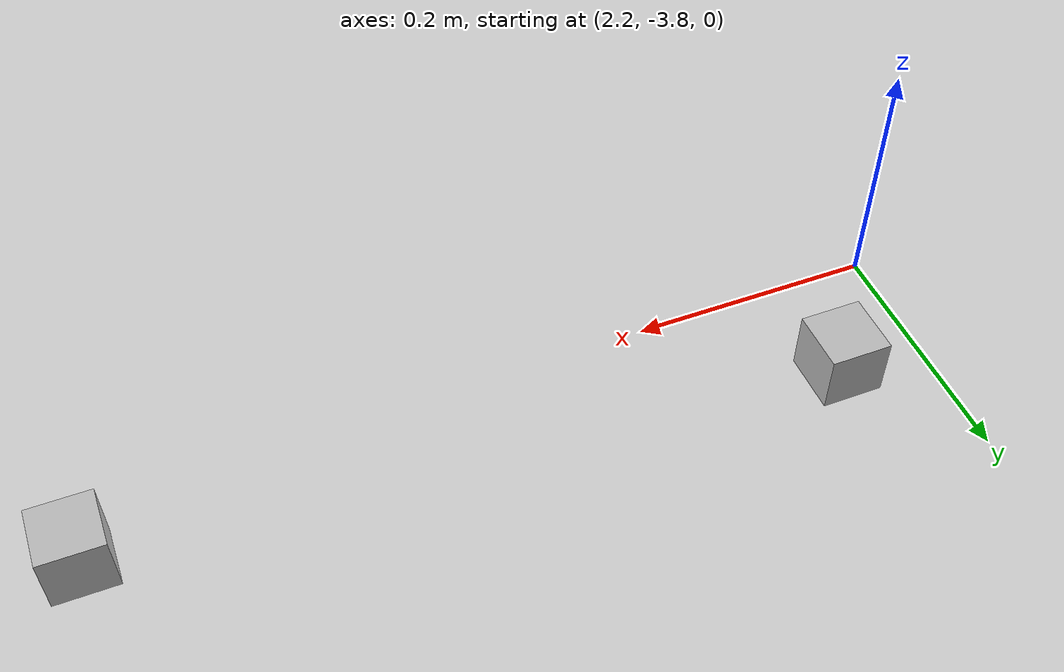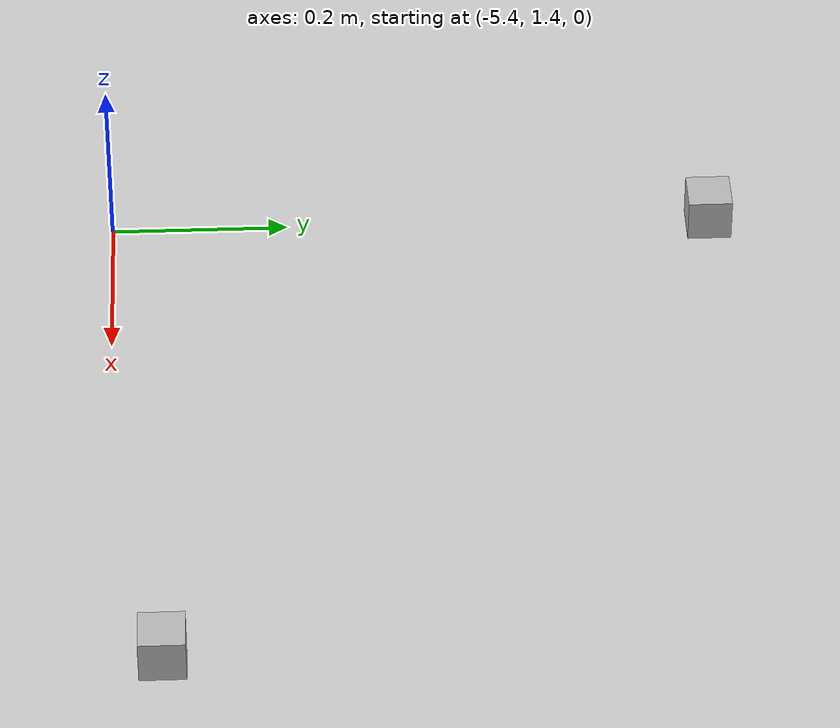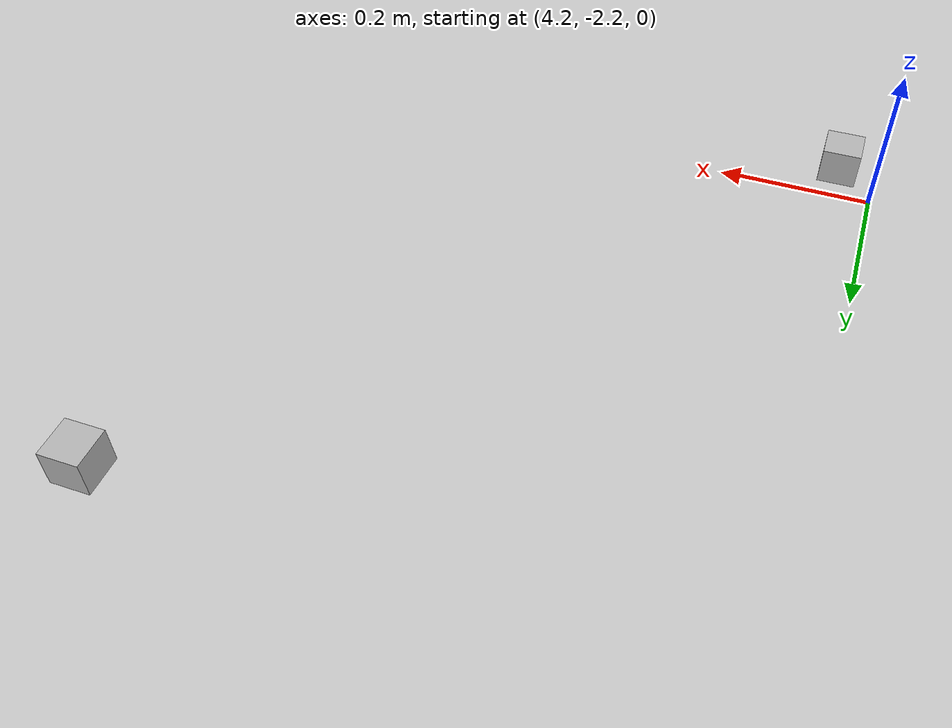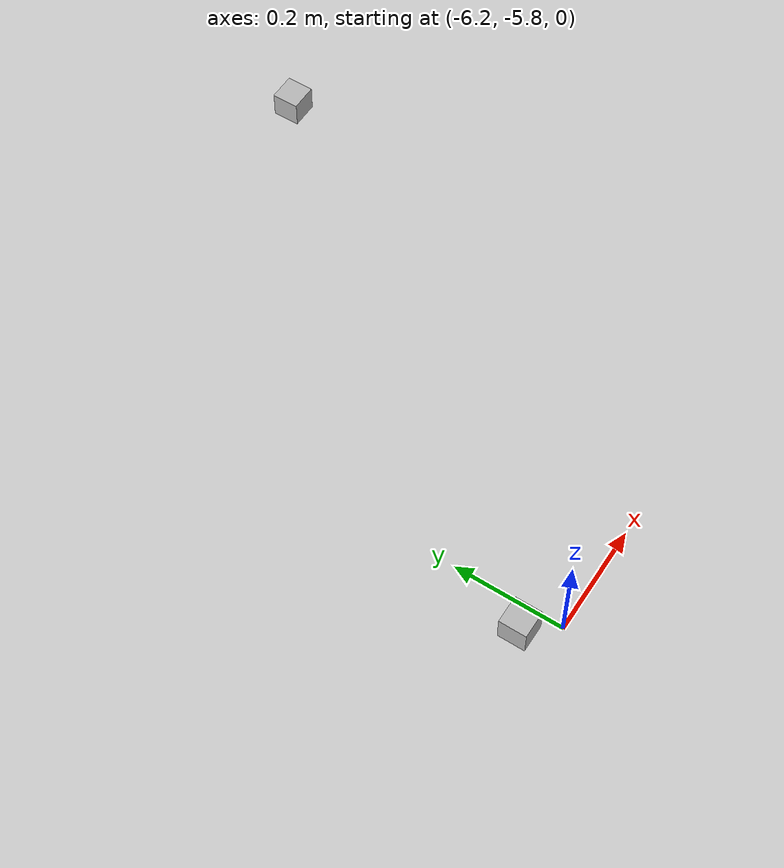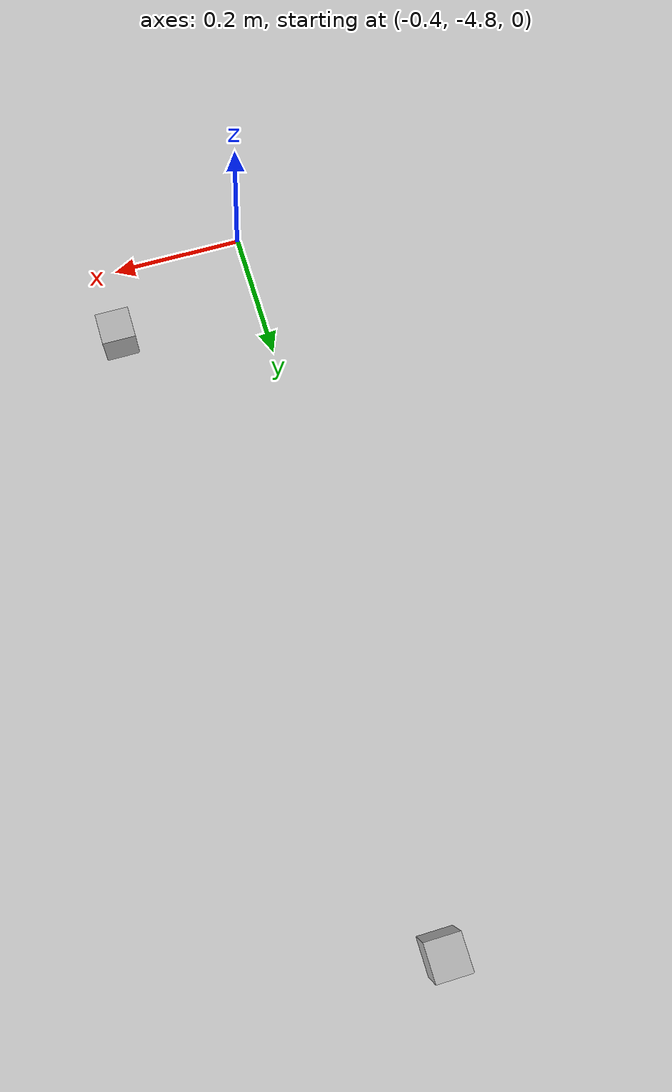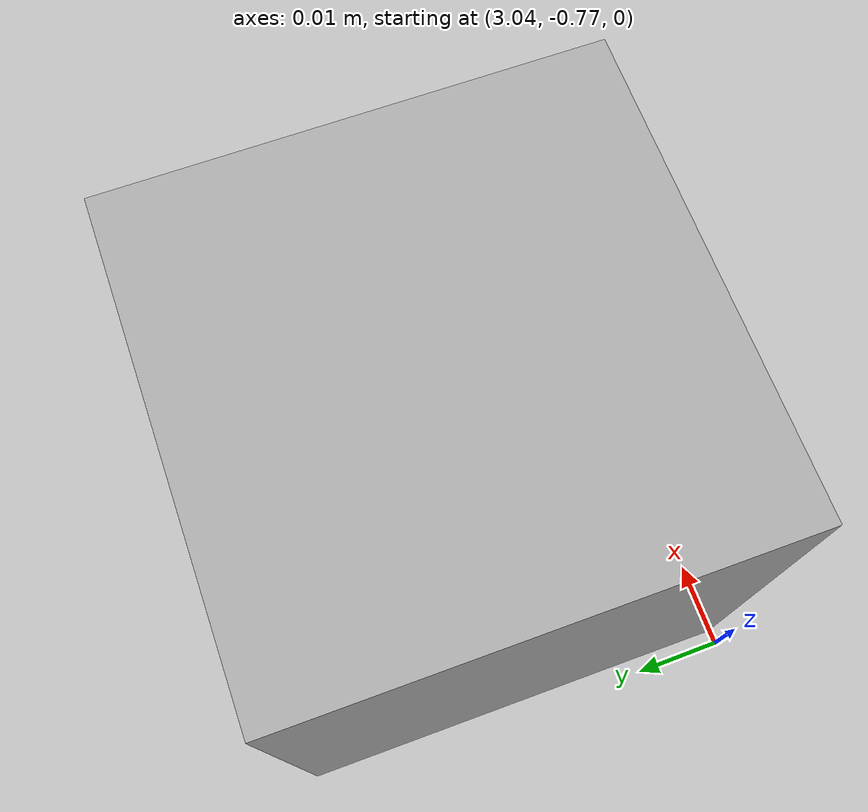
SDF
<sdf version="1.6">
 <world name="default">
  <model name="ground_plane">
   <static>1</static>
   <link name="link">
    <collision name="collision">
     <geometry><plane><normal>0 0 1</normal><size>100 100</size></plane></geometry>
     <surface><friction><ode><mu>100</mu><mu2>50</mu2></ode></friction></surface>
    </collision>
    <visual name="visual">
     <cast_shadows>0</cast_shadows>
     <geometry><plane><normal>0 0 1</normal><size>100 100</size></plane></geometry>
     <material>
      <script><uri>file://media/materials/scripts/gazebo.material</uri><name>Gazebo/Grey</name></script>
     </material>
    </visual>
   </link>
  </model>
  <light name="sun" type="directional">
   <pose>0 0 10 0 -0 0</pose>
   <diffuse>0.8 0.8 0.8 1</diffuse>
   <specular>0.1 0.1 0.1 1</specular>
   <attenuation>
    <range>1000</range>
    <constant>0.9</constant>
    <linear>0.01</linear>
    <quadratic>0.001</quadratic>
   </attenuation>
   <direction>-0.5 0.5 -1</direction>
  </light>
  <plugin name="SetupWorld" filename="libgazebo_plugins.so"/>
  <gravity>0 0 -9.8</gravity>
  <magnetic_field>6e-06 2.3e-05 -4.2e-05</magnetic_field>
  <atmosphere type="adiabatic"/>
  <physics name="default_physics" default="0" type="ode">
   <max_step_size>0.001</max_step_size>
   <real_time_factor>1</real_time_factor>
   <real_time_update_rate>1000</real_time_update_rate>
  </physics>
  <scene><ambient>0.4 0.4 0.4 1</ambient><background>0.7 0.7 0.7 1</background><shadows>1</shadows></scene>
  <spherical_coordinates>
   <surface_model>EARTH_WGS84</surface_model>
   <latitude_deg>0</latitude_deg>
   <longitude_deg>0</longitude_deg>
   <elevation>0</elevation>
   <heading_deg>0</heading_deg>
  </spherical_coordinates>
  <model name="at0">
   <static>0</static>
   <link name="link">
    <inertial>
     <mass>0.01</mass>
     <inertia><ixx>4e-05</ixx><ixy>0</ixy><ixz>0</ixz><iyy>4e-05</iyy><iyz>0</iyz><izz>4e-05</izz></inertia>
    </inertial>
    <visual name="visual">
     <geometry><box><size>0.05 0.05 0.05</size></box></geometry>
     <material>
      <script>
       <uri>model://at0/materials/scripts</uri>
       <uri>model://at0/materials/textures</uri>
       <name>at0/Diffuse</name>
      </script>
     </material>
    </visual>
    <collision name="collision">
     <geometry><box><size>0.05 0.05 0.05</size></box></geometry>
     <surface><friction><ode><mu>0.8</mu><mu2>0.7</mu2></ode></friction></surface>
    </collision>
   </link>
   <pose>-4.69459 1.45752 0.025 0 -0 0</pose>
  </model>
  <model name="at1">
   <static>0</static>
   <link name="link">
    <inertial>
     <mass>0.01</mass>
     <inertia><ixx>4e-05</ixx><ixy>0</ixy><ixz>0</ixz><iyy>4e-05</iyy><iyz>0</iyz><izz>4e-05</izz></inertia>
    </inertial>
    <visual name="visual">
     <geometry><box><size>0.05 0.05 0.05</size></box></geometry>
     <material>
      <script>
       <uri>model://at0/materials/scripts</uri>
       <uri>model://at0/materials/textures</uri>
       <name>at0/Diffuse</name>
      </script>
     </material>
    </visual>
    <collision name="collision">
     <geometry><box><size>0.05 0.05 0.05</size></box></geometry>
     <surface><friction><ode><mu>0.8</mu><mu2>0.7</mu2></ode></friction></surface>
    </collision>
   </link>
   <pose>-3.90677 -4.11847 0.025 0 -0 0</pose>
  </model>
  <model name="at2">
   <static>0</static>
   <link name="link">
    <inertial>
     <mass>0.01</mass>
     <inertia><ixx>4e-05</ixx><ixy>0</ixy><ixz>0</ixz><iyy>4e-05</iyy><iyz>0</iyz><izz>4e-05</izz></inertia>
    </inertial>
    <visual name="visual">
     <geometry><box><size>0.05 0.05 0.05</size></box></geometry>
     <material>
      <script>
       <uri>model://at0/materials/scripts</uri>
       <uri>model://at0/materials/textures</uri>
       <name>at0/Diffuse</name>
      </script>
     </material>
    </visual>
    <collision name="collision">
     <geometry><box><size>0.05 0.05 0.05</size></box></geometry>
     <surface><friction><ode><mu>0.8</mu><mu2>0.7</mu2></ode></friction></surface>
    </collision>
   </link>
   <pose>-5.68073 4.17379 0.025 0 -0 0</pose>
  </model>
  <model name="at3">
   <static>0</static>
   <link name="link">
    <inertial>
     <mass>0.01</mass>
     <inertia><ixx>4e-05</ixx><ixy>0</ixy><ixz>0</ixz><iyy>4e-05</iyy><iyz>0</iyz><izz>4e-05</izz></inertia>
    </inertial>
    <visual name="visual">
     <geometry><box><size>0.05 0.05 0.05</size></box></geometry>
     <material>
      <script>
       <uri>model://at0/materials/scripts</uri>
       <uri>model://at0/materials/textures</uri>
       <name>at0/Diffuse</name>
      </script>
     </material>
    </visual>
    <collision name="collision">
     <geometry><box><size>0.05 0.05 0.05</size></box></geometry>
     <surface><friction><ode><mu>0.8</mu><mu2>0.7</mu2></ode></friction></surface>
    </collision>
   </link>
   <pose>2.27393 -3.70157 0.025 0 -0 0</pose>
  </model>
  <model name="at4">
   <static>0</static>
   <link name="link">
    <inertial>
     <mass>0.01</mass>
     <inertia><ixx>4e-05</ixx><ixy>0</ixy><ixz>0</ixz><iyy>4e-05</iyy><iyz>0</iyz><izz>4e-05</izz></inertia>
    </inertial>
    <visual name="visual">
     <geometry><box><size>0.05 0.05 0.05</size></box></geometry>
     <material>
      <script>
       <uri>model://at0/materials/scripts</uri>
       <uri>model://at0/materials/textures</uri>
       <name>at0/Diffuse</name>
      </script>
     </material>
    </visual>
    <collision name="collision">
     <geometry><box><size>0.05 0.05 0.05</size></box></geometry>
     <surface><friction><ode><mu>0.8</mu><mu2>0.7</mu2></ode></friction></surface>
    </collision>
   </link>
   <pose>3.06671 -0.744786 0.025 0 -0 0</pose>
  </model>
  <model name="at5">
   <static>0</static>
   <link name="link">
    <inertial>
     <mass>0.01</mass>
     <inertia><ixx>4e-05</ixx><ixy>0</ixy><ixz>0</ixz><iyy>4e-05</iyy><iyz>0</iyz><izz>4e-05</izz></inertia>
    </inertial>
    <visual name="visual">
     <geometry><box><size>0.05 0.05 0.05</size></box></geometry>
     <material>
      <script>
       <uri>model://at0/materials/scripts</uri>
       <uri>model://at0/materials/textures</uri>
       <name>at0/Diffuse</name>
      </script>
     </material>
    </visual>
    <collision name="collision">
     <geometry><box><size>0.05 0.05 0.05</size></box></geometry>
     <surface><friction><ode><mu>0.8</mu><mu2>0.7</mu2></ode></friction></surface>
    </collision>
   </link>
   <pose>0.311921 -1.77842 0.025 0 -0 0</pose>
  </model>
  <model name="at6">
   <static>0</static>
   <link name="link">
    <inertial>
     <mass>0.01</mass>
     <inertia><ixx>4e-05</ixx><ixy>0</ixy><ixz>0</ixz><iyy>4e-05</iyy><iyz>0</iyz><izz>4e-05</izz></inertia>
    </inertial>
    <visual name="visual">
     <geometry><box><size>0.05 0.05 0.05</size></box></geometry>
     <material>
      <script>
       <uri>model://at0/materials/scripts</uri>
       <uri>model://at0/materials/textures</uri>
       <name>at0/Diffuse</name>
      </script>
     </material>
    </visual>
    <collision name="collision">
     <geometry><box><size>0.05 0.05 0.05</size></box></geometry>
     <surface><friction><ode><mu>0.8</mu><mu2>0.7</mu2></ode></friction></surface>
    </collision>
   </link>
   <pose>1.86597 -0.184933 0.025 0 -0 0</pose>
  </model>
  <model name="at7">
   <static>0</static>
   <link name="link">
    <inertial>
     <mass>0.01</mass>
     <inertia><ixx>4e-05</ixx><ixy>0</ixy><ixz>0</ixz><iyy>4e-05</iyy><iyz>0</iyz><izz>4e-05</izz></inertia>
    </inertial>
    <visual name="visual">
     <geometry><box><size>0.05 0.05 0.05</size></box></geometry>
     <material>
      <script>
       <uri>model://at0/materials/scripts</uri>
       <uri>model://at0/materials/textures</uri>
       <name>at0/Diffuse</name>
      </script>
     </material>
    </visual>
    <collision name="collision">
     <geometry><box><size>0.05 0.05 0.05</size></box></geometry>
     <surface><friction><ode><mu>0.8</mu><mu2>0.7</mu2></ode></friction></surface>
    </collision>
   </link>
   <pose>-6.24077 -5.74349 0.025 0 -0 0</pose>
  </model>
  <model name="at8">
   <static>0</static>
   <link name="link">
    <inertial>
     <mass>0.01</mass>
     <inertia><ixx>4e-05</ixx><ixy>0</ixy><ixz>0</ixz><iyy>4e-05</iyy><iyz>0</iyz><izz>4e-05</izz></inertia>
    </inertial>
    <visual name="visual">
     <geometry><box><size>0.05 0.05 0.05</size></box></geometry>
     <material>
      <script>
       <uri>model://at0/materials/scripts</uri>
       <uri>model://at0/materials/textures</uri>
       <name>at0/Diffuse</name>
      </script>
     </material>
    </visual>
    <collision name="collision">
     <geometry><box><size>0.05 0.05 0.05</size></box></geometry>
     <surface><friction><ode><mu>0.8</mu><mu2>0.7</mu2></ode></friction></surface>
    </collision>
   </link>
   <pose>-1.87282 -2.9987 0.025 0 -0 0</pose>
  </model>
  <model name="at9">
   <static>0</static>
   <link name="link">
    <inertial>
     <mass>0.01</mass>
     <inertia><ixx>4e-05</ixx><ixy>0</ixy><ixz>0</ixz><iyy>4e-05</iyy><iyz>0</iyz><izz>4e-05</izz></inertia>
    </inertial>
    <visual name="visual">
     <geometry><box><size>0.05 0.05 0.05</size></box></geometry>
     <material>
      <script>
       <uri>model://at0/materials/scripts</uri>
       <uri>model://at0/materials/textures</uri>
       <name>at0/Diffuse</name>
      </script>
     </material>
    </visual>
    <collision name="collision">
     <geometry><box><size>0.05 0.05 0.05</size></box></geometry>
     <surface><friction><ode><mu>0.8</mu><mu2>0.7</mu2></ode></friction></surface>
    </collision>
   </link>
   <pose>4.94588 -1.47617 0.025 0 -0 0</pose>
  </model>
  <model name="at10">
   <static>0</static>
   <link name="link">
    <inertial>
     <mass>0.01</mass>
     <inertia><ixx>4e-05</ixx><ixy>0</ixy><ixz>0</ixz><iyy>4e-05</iyy><iyz>0</iyz><izz>4e-05</izz></inertia>
    </inertial>
    <visual name="visual">
     <geometry><box><size>0.05 0.05 0.05</size></box></geometry>
     <material>
      <script>
       <uri>model://at0/materials/scripts</uri>
       <uri>model://at0/materials/textures</uri>
       <name>at0/Diffuse</name>
      </script>
     </material>
    </visual>
    <collision name="collision">
     <geometry><box><size>0.05 0.05 0.05</size></box></geometry>
     <surface><friction><ode><mu>0.8</mu><mu2>0.7</mu2></ode></friction></surface>
    </collision>
   </link>
   <pose>6.67505 3.54816 0.025 0 -0 0</pose>
  </model>
  <model name="at11">
   <static>0</static>
   <link name="link">
    <inertial>
     <mass>0.01</mass>
     <inertia><ixx>4e-05</ixx><ixy>0</ixy><ixz>0</ixz><iyy>4e-05</iyy><iyz>0</iyz><izz>4e-05</izz></inertia>
    </inertial>
    <visual name="visual">
     <geometry><box><size>0.05 0.05 0.05</size></box></geometry>
     <material>
      <script>
       <uri>model://at0/materials/scripts</uri>
       <uri>model://at0/materials/textures</uri>
       <name>at0/Diffuse</name>
      </script>
     </material>
    </visual>
    <collision name="collision">
     <geometry><box><size>0.05 0.05 0.05</size></box></geometry>
     <surface><friction><ode><mu>0.8</mu><mu2>0.7</mu2></ode></friction></surface>
    </collision>
   </link>
   <pose>5.0062 -4.19764 0.025 0 -0 0</pose>
  </model>
  <model name="at12">
   <static>0</static>
   <link name="link">
    <inertial>
     <mass>0.01</mass>
     <inertia><ixx>4e-05</ixx><ixy>0</ixy><ixz>0</ixz><iyy>4e-05</iyy><iyz>0</iyz><izz>4e-05</izz></inertia>
    </inertial>
    <visual name="visual">
     <geometry><box><size>0.05 0.05 0.05</size></box></geometry>
     <material>
      <script>
       <uri>model://at0/materials/scripts</uri>
       <uri>model://at0/materials/textures</uri>
       <name>at0/Diffuse</name>
      </script>
     </material>
    </visual>
    <collision name="collision">
     <geometry><box><size>0.05 0.05 0.05</size></box></geometry>
     <surface><friction><ode><mu>0.8</mu><mu2>0.7</mu2></ode></friction></surface>
    </collision>
   </link>
   <pose>4.73783 1.36697 0.025 0 -0 0</pose>
  </model>
  <model name="at13">
   <static>0</static>
   <link name="link">
    <inertial>
     <mass>0.01</mass>
     <inertia><ixx>4e-05</ixx><ixy>0</ixy><ixz>0</ixz><iyy>4e-05</iyy><iyz>0</iyz><izz>4e-05</izz></inertia>
    </inertial>
    <visual name="visual">
     <geometry><box><size>0.05 0.05 0.05</size></box></geometry>
     <material>
      <script>
       <uri>model://at0/materials/scripts</uri>
       <uri>model://at0/materials/textures</uri>
       <name>at0/Diffuse</name>
      </script>
     </material>
    </visual>
    <collision name="collision">
     <geometry><box><size>0.05 0.05 0.05</size></box></geometry>
     <surface><friction><ode><mu>0.8</mu><mu2>0.7</mu2></ode></friction></surface>
    </collision>
   </link>
   <pose>5.10889 5.39844 0.025 0 -0 0</pose>
  </model>
  <model name="at14">
   <static>0</static>
   <link name="link">
    <inertial>
     <mass>0.01</mass>
     <inertia><ixx>4e-05</ixx><ixy>0</ixy><ixz>0</ixz><iyy>4e-05</iyy><iyz>0</iyz><izz>4e-05</izz></inertia>
    </inertial>
    <visual name="visual">
     <geometry><box><size>0.05 0.05 0.05</size></box></geometry>
     <material>
      <script>
       <uri>model://at0/materials/scripts</uri>
       <uri>model://at0/materials/textures</uri>
       <name>at0/Diffuse</name>
      </script>
     </material>
    </visual>
    <collision name="collision">
     <geometry><box><size>0.05 0.05 0.05</size></box></geometry>
     <surface><friction><ode><mu>0.8</mu><mu2>0.7</mu2></ode></friction></surface>
    </collision>
   </link>
   <pose>-6.88516 3.88805 0.025 0 -0 0</pose>
  </model>
  <model name="at15">
   <static>0</static>
   <link name="link">
    <inertial>
     <mass>0.01</mass>
     <inertia><ixx>4e-05</ixx><ixy>0</ixy><ixz>0</ixz><iyy>4e-05</iyy><iyz>0</iyz><izz>4e-05</izz></inertia>
    </inertial>
    <visual name="visual">
     <geometry><box><size>0.05 0.05 0.05</size></box></geometry>
     <material>
      <script>
       <uri>model://at0/materials/scripts</uri>
       <uri>model://at0/materials/textures</uri>
       <name>at0/Diffuse</name>
      </script>
     </material>
    </visual>
    <collision name="collision">
     <geometry><box><size>0.05 0.05 0.05</size></box></geometry>
     <surface><friction><ode><mu>0.8</mu><mu2>0.7</mu2></ode></friction></surface>
    </collision>
   </link>
   <pose>-0.178467 -4.67975 0.025 0 -0 0</pose>
  </model>
  <model name="at16">
   <static>0</static>
   <link name="link">
    <inertial>
     <mass>0.01</mass>
     <inertia><ixx>4e-05</ixx><ixy>0</ixy><ixz>0</ixz><iyy>4e-05</iyy><iyz>0</iyz><izz>4e-05</izz></inertia>
    </inertial>
    <visual name="visual">
     <geometry><box><size>0.05 0.05 0.05</size></box></geometry>
     <material>
      <script>
       <uri>model://at0/materials/scripts</uri>
       <uri>model://at0/materials/textures</uri>
       <name>at0/Diffuse</name>
      </script>
     </material>
    </visual>
    <collision name="collision">
     <geometry><box><size>0.05 0.05 0.05</size></box></geometry>
     <surface><friction><ode><mu>0.8</mu><mu2>0.7</mu2></ode></friction></surface>
    </collision>
   </link>
   <pose>-1.55443 2.81476 0.025 0 -0 0</pose>
  </model>
  <model name="at17">
   <static>0</static>
   <link name="link">
    <inertial>
     <mass>0.01</mass>
     <inertia><ixx>4e-05</ixx><ixy>0</ixy><ixz>0</ixz><iyy>4e-05</iyy><iyz>0</iyz><izz>4e-05</izz></inertia>
    </inertial>
    <visual name="visual">
     <geometry><box><size>0.05 0.05 0.05</size></box></geometry>
     <material>
      <script>
       <uri>model://at0/materials/scripts</uri>
       <uri>model://at0/materials/textures</uri>
       <name>at0/Diffuse</name>
      </script>
     </material>
    </visual>
    <collision name="collision">
     <geometry><box><size>0.05 0.05 0.05</size></box></geometry>
     <surface><friction><ode><mu>0.8</mu><mu2>0.7</mu2></ode></friction></surface>
    </collision>
   </link>
   <pose>-1.89822 -0.335163 0.025 0 -0 0</pose>
  </model>
  <model name="at18">
   <static>0</static>
   <link name="link">
    <inertial>
     <mass>0.01</mass>
     <inertia><ixx>4e-05</ixx><ixy>0</ixy><ixz>0</ixz><iyy>4e-05</iyy><iyz>0</iyz><izz>4e-05</izz></inertia>
    </inertial>
    <visual name="visual">
     <geometry><box><size>0.05 0.05 0.05</size></box></geometry>
     <material>
      <script>
       <uri>model://at0/materials/scripts</uri>
       <uri>model://at0/materials/textures</uri>
       <name>at0/Diffuse</name>
      </script>
     </material>
    </visual>
    <collision name="collision">
     <geometry><box><size>0.05 0.05 0.05</size></box></geometry>
     <surface><friction><ode><mu>0.8</mu><mu2>0.7</mu2></ode></friction></surface>
    </collision>
   </link>
   <pose>0.088555 -6.5243 0.025 0 -0 0</pose>
  </model>
  <model name="at19">
   <static>0</static>
   <link name="link">
    <inertial>
     <mass>0.01</mass>
     <inertia><ixx>4e-05</ixx><ixy>0</ixy><ixz>0</ixz><iyy>4e-05</iyy><iyz>0</iyz><izz>4e-05</izz></inertia>
    </inertial>
    <visual name="visual">
     <geometry><box><size>0.05 0.05 0.05</size></box></geometry>
     <material>
      <script>
       <uri>model://at0/materials/scripts</uri>
       <uri>model://at0/materials/textures</uri>
       <name>at0/Diffuse</name>
      </script>
     </material>
    </visual>
    <collision name="collision">
     <geometry><box><size>0.05 0.05 0.05</size></box></geometry>
     <surface><friction><ode><mu>0.8</mu><mu2>0.7</mu2></ode></friction></surface>
    </collision>
   </link>
   <pose>2.86327 -3.74474 0.025 0 -0 0</pose>
  </model>
  <model name="at20">
   <static>0</static>
   <link name="link">
    <inertial>
     <mass>0.01</mass>
     <inertia><ixx>4e-05</ixx><ixy>0</ixy><ixz>0</ixz><iyy>4e-05</iyy><iyz>0</iyz><izz>4e-05</izz></inertia>
    </inertial>
    <visual name="visual">
     <geometry><box><size>0.05 0.05 0.05</size></box></geometry>
     <material>
      <script>
       <uri>model://at0/materials/scripts</uri>
       <uri>model://at0/materials/textures</uri>
       <name>at0/Diffuse</name>
      </script>
     </material>
    </visual>
    <collision name="collision">
     <geometry><box><size>0.05 0.05 0.05</size></box></geometry>
     <surface><friction><ode><mu>0.8</mu><mu2>0.7</mu2></ode></friction></surface>
    </collision>
   </link>
   <pose>-0.369081 -3.72481 0.025 0 -0 0</pose>
  </model>
  <model name="at21">
   <static>0</static>
   <link name="link">
    <inertial>
     <mass>0.01</mass>
     <inertia><ixx>4e-05</ixx><ixy>0</ixy><ixz>0</ixz><iyy>4e-05</iyy><iyz>0</iyz><izz>4e-05</izz></inertia>
    </inertial>
    <visual name="visual">
     <geometry><box><size>0.05 0.05 0.05</size></box></geometry>
     <material>
      <script>
       <uri>model://at0/materials/scripts</uri>
       <uri>model://at0/materials/textures</uri>
       <name>at0/Diffuse</name>
      </script>
     </material>
    </visual>
    <collision name="collision">
     <geometry><box><size>0.05 0.05 0.05</size></box></geometry>
     <surface><friction><ode><mu>0.8</mu><mu2>0.7</mu2></ode></friction></surface>
    </collision>
   </link>
   <pose>1.37684 -5.40311 0.025 0 -0 0</pose>
  </model>
  <model name="at22">
   <static>0</static>
   <link name="link">
    <inertial>
     <mass>0.01</mass>
     <inertia><ixx>4e-05</ixx><ixy>0</ixy><ixz>0</ixz><iyy>4e-05</iyy><iyz>0</iyz><izz>4e-05</izz></inertia>
    </inertial>
    <visual name="visual">
     <geometry><box><size>0.05 0.05 0.05</size></box></geometry>
     <material>
      <script>
       <uri>model://at0/materials/scripts</uri>
       <uri>model://at0/materials/textures</uri>
       <name>at0/Diffuse</name>
      </script>
     </material>
    </visual>
    <collision name="collision">
     <geometry><box><size>0.05 0.05 0.05</size></box></geometry>
     <surface><friction><ode><mu>0.8</mu><mu2>0.7</mu2></ode></friction></surface>
    </collision>
   </link>
   <pose>2.99026 2.03607 0.025 0 -0 0</pose>
  </model>
  <model name="at23">
   <static>0</static>
   <link name="link">
    <inertial>
     <mass>0.01</mass>
     <inertia><ixx>4e-05</ixx><ixy>0</ixy><ixz>0</ixz><iyy>4e-05</iyy><iyz>0</iyz><izz>4e-05</izz></inertia>
    </inertial>
    <visual name="visual">
     <geometry><box><size>0.05 0.05 0.05</size></box></geometry>
     <material>
      <script>
       <uri>model://at0/materials/scripts</uri>
       <uri>model://at0/materials/textures</uri>
       <name>at0/Diffuse</name>
      </script>
     </material>
    </visual>
    <collision name="collision">
     <geometry><box><size>0.05 0.05 0.05</size></box></geometry>
     <surface><friction><ode><mu>0.8</mu><mu2>0.7</mu2></ode></friction></surface>
    </collision>
   </link>
   <pose>-4.2466 -5.78257 0.025 0 -0 0</pose>
  </model>
  <model name="at24">
   <static>0</static>
   <link name="link">
    <inertial>
     <mass>0.01</mass>
     <inertia><ixx>4e-05</ixx><ixy>0</ixy><ixz>0</ixz><iyy>4e-05</iyy><iyz>0</iyz><izz>4e-05</izz></inertia>
    </inertial>
    <visual name="visual">
     <geometry><box><size>0.05 0.05 0.05</size></box></geometry>
     <material>
      <script>
       <uri>model://at0/materials/scripts</uri>
       <uri>model://at0/materials/textures</uri>
       <name>at0/Diffuse</name>
      </script>
     </material>
    </visual>
    <collision name="collision">
     <geometry><box><size>0.05 0.05 0.05</size></box></geometry>
     <surface><friction><ode><mu>0.8</mu><mu2>0.7</mu2></ode></friction></surface>
    </collision>
   </link>
   <pose>5.93738 -6.20071 0.025 0 -0 0</pose>
  </model>
  <model name="at25">
   <static>0</static>
   <link name="link">
    <inertial>
     <mass>0.01</mass>
     <inertia><ixx>4e-05</ixx><ixy>0</ixy><ixz>0</ixz><iyy>4e-05</iyy><iyz>0</iyz><izz>4e-05</izz></inertia>
    </inertial>
    <visual name="visual">
     <geometry><box><size>0.05 0.05 0.05</size></box></geometry>
     <material>
      <script>
       <uri>model://at0/materials/scripts</uri>
       <uri>model://at0/materials/textures</uri>
       <name>at0/Diffuse</name>
      </script>
     </material>
    </visual>
    <collision name="collision">
     <geometry><box><size>0.05 0.05 0.05</size></box></geometry>
     <surface><friction><ode><mu>0.8</mu><mu2>0.7</mu2></ode></friction></surface>
    </collision>
   </link>
   <pose>-0.358736 5.71243 0.025 0 -0 0</pose>
  </model>
  <model name="at26">
   <static>0</static>
   <link name="link">
    <inertial>
     <mass>0.01</mass>
     <inertia><ixx>4e-05</ixx><ixy>0</ixy><ixz>0</ixz><iyy>4e-05</iyy><iyz>0</iyz><izz>4e-05</izz></inertia>
    </inertial>
    <visual name="visual">
     <geometry><box><size>0.05 0.05 0.05</size></box></geometry>
     <material>
      <script>
       <uri>model://at0/materials/scripts</uri>
       <uri>model://at0/materials/textures</uri>
       <name>at0/Diffuse</name>
      </script>
     </material>
    </visual>
    <collision name="collision">
     <geometry><box><size>0.05 0.05 0.05</size></box></geometry>
     <surface><friction><ode><mu>0.8</mu><mu2>0.7</mu2></ode></friction></surface>
    </collision>
   </link>
   <pose>4.24745 -2.25253 0.025 0 -0 0</pose>
  </model>
  <model name="at27">
   <static>0</static>
   <link name="link">
    <inertial>
     <mass>0.01</mass>
     <inertia><ixx>4e-05</ixx><ixy>0</ixy><ixz>0</ixz><iyy>4e-05</iyy><iyz>0</iyz><izz>4e-05</izz></inertia>
    </inertial>
    <visual name="visual">
     <geometry><box><size>0.05 0.05 0.05</size></box></geometry>
     <material>
      <script>
       <uri>model://at0/materials/scripts</uri>
       <uri>model://at0/materials/textures</uri>
       <name>at0/Diffuse</name>
      </script>
     </material>
    </visual>
    <collision name="collision">
     <geometry><box><size>0.05 0.05 0.05</size></box></geometry>
     <surface><friction><ode><mu>0.8</mu><mu2>0.7</mu2></ode></friction></surface>
    </collision>
   </link>
   <pose>-5.38521 2.08528 0.025 0 -0 0</pose>
  </model>
  <model name="at28">
   <static>0</static>
   <link name="link">
    <inertial>
     <mass>0.01</mass>
     <inertia><ixx>4e-05</ixx><ixy>0</ixy><ixz>0</ixz><iyy>4e-05</iyy><iyz>0</iyz><izz>4e-05</izz></inertia>
    </inertial>
    <visual name="visual">
     <geometry><box><size>0.05 0.05 0.05</size></box></geometry>
     <material>
      <script>
       <uri>model://at0/materials/scripts</uri>
       <uri>model://at0/materials/textures</uri>
       <name>at0/Diffuse</name>
      </script>
     </material>
    </visual>
    <collision name="collision">
     <geometry><box><size>0.05 0.05 0.05</size></box></geometry>
     <surface><friction><ode><mu>0.8</mu><mu2>0.7</mu2></ode></friction></surface>
    </collision>
   </link>
   <pose>6.01444 6.62368 0.025 0 -0 0</pose>
  </model>
  <model name="at29">
   <static>0</static>
   <link name="link">
    <inertial>
     <mass>0.01</mass>
     <inertia><ixx>4e-05</ixx><ixy>0</ixy><ixz>0</ixz><iyy>4e-05</iyy><iyz>0</iyz><izz>4e-05</izz></inertia>
    </inertial>
    <visual name="visual">
     <geometry><box><size>0.05 0.05 0.05</size></box></geometry>
     <material>
      <script>
       <uri>model://at0/materials/scripts</uri>
       <uri>model://at0/materials/textures</uri>
       <name>at0/Diffuse</name>
      </script>
     </material>
    </visual>
    <collision name="collision">
     <geometry><box><size>0.05 0.05 0.05</size></box></geometry>
     <surface><friction><ode><mu>0.8</mu><mu2>0.7</mu2></ode></friction></surface>
    </collision>
   </link>
   <pose>0.583716 6.02928 0.025 0 -0 0</pose>
  </model>
  <model name="at30">
   <static>0</static>
   <link name="link">
    <inertial>
     <mass>0.01</mass>
     <inertia><ixx>4e-05</ixx><ixy>0</ixy><ixz>0</ixz><iyy>4e-05</iyy><iyz>0</iyz><izz>4e-05</izz></inertia>
    </inertial>
    <visual name="visual">
     <geometry><box><size>0.05 0.05 0.05</size></box></geometry>
     <material>
      <script>
       <uri>model://at0/materials/scripts</uri>
       <uri>model://at0/materials/textures</uri>
       <name>at0/Diffuse</name>
      </script>
     </material>
    </visual>
    <collision name="collision">
     <geometry><box><size>0.05 0.05 0.05</size></box></geometry>
     <surface><friction><ode><mu>0.8</mu><mu2>0.7</mu2></ode></friction></surface>
    </collision>
   </link>
   <pose>3.61174 -6.49475 0.025 0 -0 0</pose>
  </model>
  <model name="at31">
   <static>0</static>
   <link name="link">
    <inertial>
     <mass>0.01</mass>
     <inertia><ixx>4e-05</ixx><ixy>0</ixy><ixz>0</ixz><iyy>4e-05</iyy><iyz>0</iyz><izz>4e-05</izz></inertia>
    </inertial>
    <visual name="visual">
     <geometry><box><size>0.05 0.05 0.05</size></box></geometry>
     <material>
      <script>
       <uri>model://at0/materials/scripts</uri>
       <uri>model://at0/materials/textures</uri>
       <name>at0/Diffuse</name>
      </script>
     </material>
    </visual>
    <collision name="collision">
     <geometry><box><size>0.05 0.05 0.05</size></box></geometry>
     <surface><friction><ode><mu>0.8</mu><mu2>0.7</mu2></ode></friction></surface>
    </collision>
   </link>
   <pose>-5.55047 -4.84269 0.025 0 -0 0</pose>
  </model>
 </world>
</sdf>
